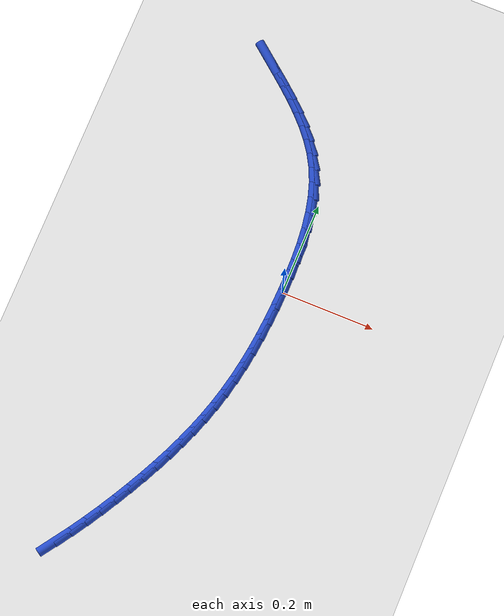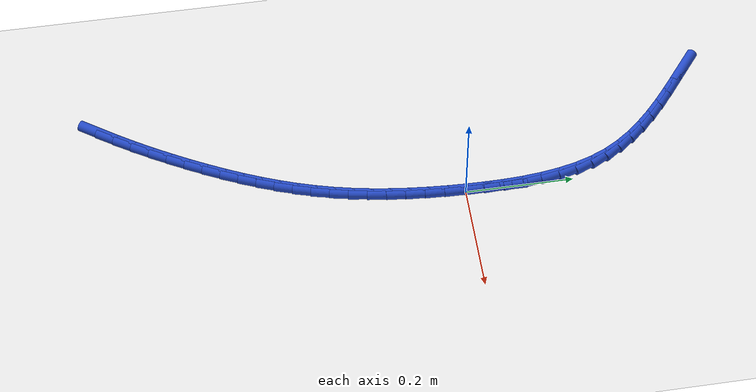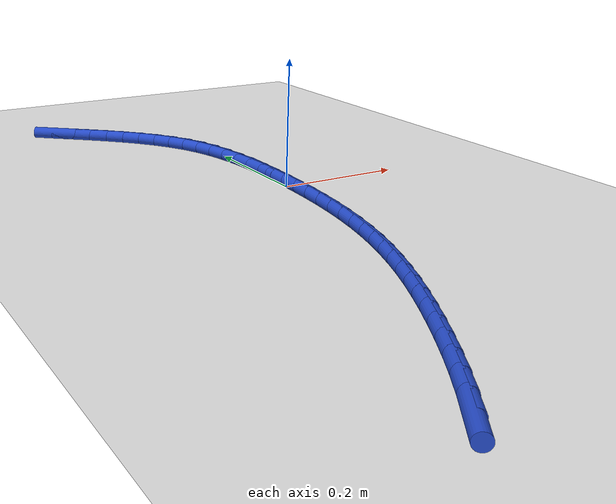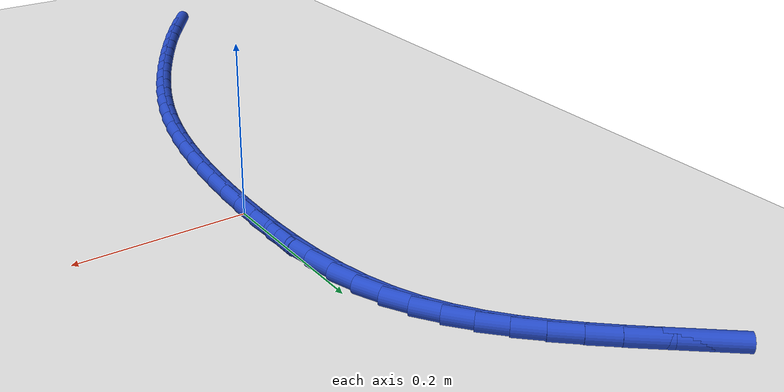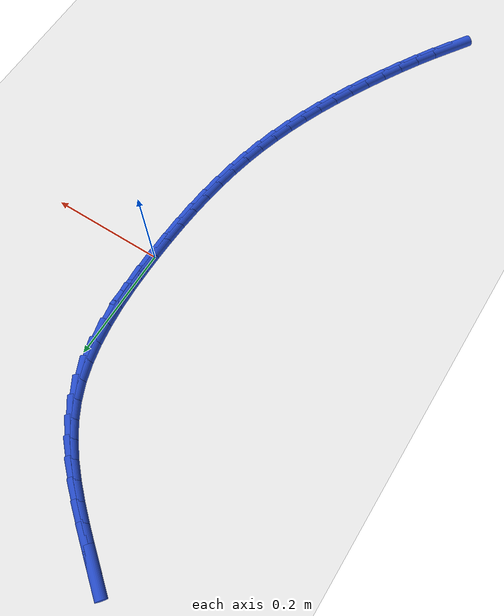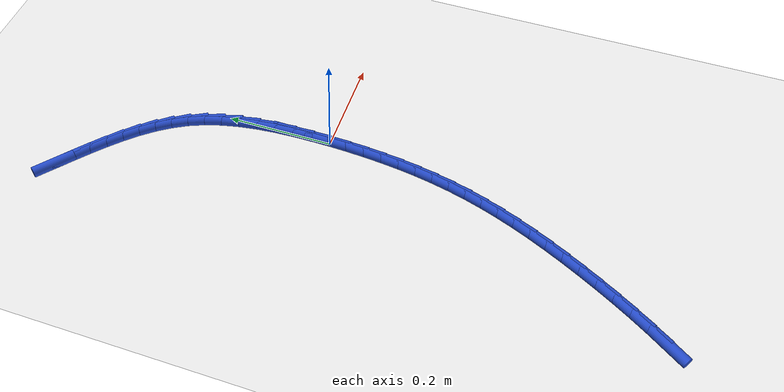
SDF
<sdf version="1.6">
 <world name="default">
  <model name="ground_plane">
   <static>1</static>
   <link name="link">
    <collision name="collision">
     <geometry><plane><normal>0 0 1</normal><size>100 100</size></plane></geometry>
     <surface><friction><ode><mu>100</mu><mu2>50</mu2></ode></friction></surface>
    </collision>
    <visual name="visual">
     <cast_shadows>0</cast_shadows>
     <geometry><plane><normal>0 0 1</normal><size>100 100</size></plane></geometry>
     <material>
      <script><uri>file://media/materials/scripts/gazebo.material</uri><name>Gazebo/WhiteGlow</name></script>
     </material>
    </visual>
   </link>
  </model>
  <model name="line">
   <link name="link_0">
    <pose>1.496198998029996e-17 3.469446951953614e-17 0.01 0 1.57 1.5543776949053272</pose>
    <collision name="collision">
     <geometry><cylinder><radius>0.01</radius><length>0.08</length></cylinder></geometry>
    </collision>
    <visual name="visual">
     <material>
      <script><name>Gazebo/Blue</name><uri>file://media/materials/scripts/gazebo.material</uri></script>
     </material>
     <geometry><cylinder><radius>0.01</radius><length>0.08</length></cylinder></geometry>
    </visual>
   </link>
   <link name="link_1">
    <pose>0.0005924864957599677 0.03608298545428858 0.01 0 1.57 -1.559025904976044</pose>
    <collision name="collision">
     <geometry><cylinder><radius>0.01</radius><length>0.08</length></cylinder></geometry>
    </collision>
    <visual name="visual">
     <material>
      <script><name>Gazebo/Blue</name><uri>file://media/materials/scripts/gazebo.material</uri></script>
     </material>
     <geometry><cylinder><radius>0.01</radius><length>0.08</length></cylinder></geometry>
    </visual>
   </link>
   <link name="link_2">
    <pose>0.000166573687951816 0.07226632239206232 0.01 0 1.57 -1.522479859722978</pose>
    <collision name="collision">
     <geometry><cylinder><radius>0.01</radius><length>0.08</length></cylinder></geometry>
    </collision>
    <visual name="visual">
     <material>
      <script><name>Gazebo/Blue</name><uri>file://media/materials/scripts/gazebo.material</uri></script>
     </material>
     <geometry><cylinder><radius>0.01</radius><length>0.08</length></cylinder></geometry>
    </visual>
   </link>
   <link name="link_3">
    <pose>-0.0015710022527494825 0.10820072990928557 0.01 0 1.57 -1.4764854704934336</pose>
    <collision name="collision">
     <geometry><cylinder><radius>0.01</radius><length>0.08</length></cylinder></geometry>
    </collision>
    <visual name="visual">
     <material>
      <script><name>Gazebo/Blue</name><uri>file://media/materials/scripts/gazebo.material</uri></script>
     </material>
     <geometry><cylinder><radius>0.01</radius><length>0.08</length></cylinder></geometry>
    </visual>
   </link>
   <link name="link_4">
    <pose>-0.004913505155668969 0.14353692710192276 0.01 0 1.57 -1.4195641448092575</pose>
    <collision name="collision">
     <geometry><cylinder><radius>0.01</radius><length>0.08</length></cylinder></geometry>
    </collision>
    <visual name="visual">
     <material>
      <script><name>Gazebo/Blue</name><uri>file://media/materials/scripts/gazebo.material</uri></script>
     </material>
     <geometry><cylinder><radius>0.01</radius><length>0.08</length></cylinder></geometry>
    </visual>
   </link>
   <link name="link_5">
    <pose>-0.010154198850131687 0.17792563306593803 0.01 0 1.57 -1.3498712737847405</pose>
    <collision name="collision">
     <geometry><cylinder><radius>0.01</radius><length>0.08</length></cylinder></geometry>
    </collision>
    <visual name="visual">
     <material>
      <script><name>Gazebo/Blue</name><uri>file://media/materials/scripts/gazebo.material</uri></script>
     </material>
     <geometry><cylinder><radius>0.01</radius><length>0.08</length></cylinder></geometry>
    </visual>
   </link>
   <link name="link_6">
    <pose>-0.017586347165462694 0.2110175668972959 0.01 0 1.57 -1.2653053194806407</pose>
    <collision name="collision">
     <geometry><cylinder><radius>0.01</radius><length>0.08</length></cylinder></geometry>
    </collision>
    <visual name="visual">
     <material>
      <script><name>Gazebo/Blue</name><uri>file://media/materials/scripts/gazebo.material</uri></script>
     </material>
     <geometry><cylinder><radius>0.01</radius><length>0.08</length></cylinder></geometry>
    </visual>
   </link>
   <link name="link_7">
    <pose>-0.027503213930987015 0.24246344769196065 0.01 0 1.57 -1.1641971243596845</pose>
    <collision name="collision">
     <geometry><cylinder><radius>0.01</radius><length>0.08</length></cylinder></geometry>
    </collision>
    <visual name="visual">
     <material>
      <script><name>Gazebo/Blue</name><uri>file://media/materials/scripts/gazebo.material</uri></script>
     </material>
     <geometry><cylinder><radius>0.01</radius><length>0.08</length></cylinder></geometry>
    </visual>
   </link>
   <link name="link_8">
    <pose>-0.040188831175435036 0.2719241907529846 0.01 0 1.57 -1.0572484125708297</pose>
    <collision name="collision">
     <geometry><cylinder><radius>0.01</radius><length>0.08</length></cylinder></geometry>
    </collision>
    <visual name="visual">
     <material>
      <script><name>Gazebo/Blue</name><uri>file://media/materials/scripts/gazebo.material</uri></script>
     </material>
     <geometry><cylinder><radius>0.01</radius><length>0.08</length></cylinder></geometry>
    </visual>
   </link>
   <link name="link_9">
    <pose>-0.05566061919327846 0.2993551748986102 0.01 0 1.57 -0.9602683025920746</pose>
    <collision name="collision">
     <geometry><cylinder><radius>0.01</radius><length>0.08</length></cylinder></geometry>
    </collision>
    <visual name="visual">
     <material>
      <script><name>Gazebo/Blue</name><uri>file://media/materials/scripts/gazebo.material</uri></script>
     </material>
     <geometry><cylinder><radius>0.01</radius><length>0.08</length></cylinder></geometry>
    </visual>
   </link>
   <link name="link_10">
    <pose>-0.07363521219298796 0.32504398686152225 0.01 0 1.57 -0.876838987231082</pose>
    <collision name="collision">
     <geometry><cylinder><radius>0.01</radius><length>0.08</length></cylinder></geometry>
    </collision>
    <visual name="visual">
     <material>
      <script><name>Gazebo/Blue</name><uri>file://media/materials/scripts/gazebo.material</uri></script>
     </material>
     <geometry><cylinder><radius>0.01</radius><length>0.08</length></cylinder></geometry>
    </visual>
   </link>
   <link name="link_11">
    <pose>-0.09381314653134952 0.34929599289940366 0.01 0 1.57 -0.8083742009736272</pose>
    <collision name="collision">
     <geometry><cylinder><radius>0.01</radius><length>0.08</length></cylinder></geometry>
    </collision>
    <visual name="visual">
     <material>
      <script><name>Gazebo/Blue</name><uri>file://media/materials/scripts/gazebo.material</uri></script>
     </material>
     <geometry><cylinder><radius>0.01</radius><length>0.08</length></cylinder></geometry>
    </visual>
   </link>
   <link name="link_12">
    <pose>-0.11589495856514943 0.3724165592699378 0.01 0 1.57 -0.7551396467539171</pose>
    <collision name="collision">
     <geometry><cylinder><radius>0.01</radius><length>0.08</length></cylinder></geometry>
    </collision>
    <visual name="visual">
     <material>
      <script><name>Gazebo/Blue</name><uri>file://media/materials/scripts/gazebo.material</uri></script>
     </material>
     <geometry><cylinder><radius>0.01</radius><length>0.08</length></cylinder></geometry>
    </visual>
   </link>
   <link name="link_13">
    <pose>-0.13958118465117353 0.3947110522308071 0.01 0 1.57 -0.7167072337716769</pose>
    <collision name="collision">
     <geometry><cylinder><radius>0.01</radius><length>0.08</length></cylinder></geometry>
    </collision>
    <visual name="visual">
     <material>
      <script><name>Gazebo/Blue</name><uri>file://media/materials/scripts/gazebo.material</uri></script>
     </material>
     <geometry><cylinder><radius>0.01</radius><length>0.08</length></cylinder></geometry>
    </visual>
   </link>
   <link name="link_14">
    <pose>-0.16457236114620796 0.4164848380396951 0.01 0 1.57 -0.6923398217971319</pose>
    <collision name="collision">
     <geometry><cylinder><radius>0.01</radius><length>0.08</length></cylinder></geometry>
    </collision>
    <visual name="visual">
     <material>
      <script><name>Gazebo/Blue</name><uri>file://media/materials/scripts/gazebo.material</uri></script>
     </material>
     <geometry><cylinder><radius>0.01</radius><length>0.08</length></cylinder></geometry>
    </visual>
   </link>
   <link name="link_15">
    <pose>-0.1905690244070389 0.43804328295428463 0.01 0 1.57 -0.681244977231006</pose>
    <collision name="collision">
     <geometry><cylinder><radius>0.01</radius><length>0.08</length></cylinder></geometry>
    </collision>
    <visual name="visual">
     <material>
      <script><name>Gazebo/Blue</name><uri>file://media/materials/scripts/gazebo.material</uri></script>
     </material>
     <geometry><cylinder><radius>0.01</radius><length>0.08</length></cylinder></geometry>
    </visual>
   </link>
   <link name="link_16">
    <pose>-0.21727171079045235 0.4596917532322585 0.01 0 1.57 -0.6827074851305684</pose>
    <collision name="collision">
     <geometry><cylinder><radius>0.01</radius><length>0.08</length></cylinder></geometry>
    </collision>
    <visual name="visual">
     <material>
      <script><name>Gazebo/Blue</name><uri>file://media/materials/scripts/gazebo.material</uri></script>
     </material>
     <geometry><cylinder><radius>0.01</radius><length>0.08</length></cylinder></geometry>
    </visual>
   </link>
   <link name="link_220">
    <pose>-0.22813559499087738 -0.6545110411851145 0.01 0 1.57 0.9734274152386753</pose>
    <collision name="collision">
     <geometry><cylinder><radius>0.01</radius><length>0.08</length></cylinder></geometry>
    </collision>
    <visual name="visual">
     <material>
      <script><name>Gazebo/Blue</name><uri>file://media/materials/scripts/gazebo.material</uri></script>
     </material>
     <geometry><cylinder><radius>0.01</radius><length>0.08</length></cylinder></geometry>
    </visual>
   </link>
   <link name="link_221">
    <pose>-0.20720306438907737 -0.6237406318837844 0.01 0 1.57 1.0017370590022014</pose>
    <collision name="collision">
     <geometry><cylinder><radius>0.01</radius><length>0.08</length></cylinder></geometry>
    </collision>
    <visual name="visual">
     <material>
      <script><name>Gazebo/Blue</name><uri>file://media/materials/scripts/gazebo.material</uri></script>
     </material>
     <geometry><cylinder><radius>0.01</radius><length>0.08</length></cylinder></geometry>
    </visual>
   </link>
   <link name="link_222">
    <pose>-0.18718044275612852 -0.5924377818040423 0.01 0 1.57 1.0273182517447035</pose>
    <collision name="collision">
     <geometry><cylinder><radius>0.01</radius><length>0.08</length></cylinder></geometry>
    </collision>
    <visual name="visual">
     <material>
      <script><name>Gazebo/Blue</name><uri>file://media/materials/scripts/gazebo.material</uri></script>
     </material>
     <geometry><cylinder><radius>0.01</radius><length>0.08</length></cylinder></geometry>
    </visual>
   </link>
   <link name="link_223">
    <pose>-0.16805080638249478 -0.560774969754413 0.01 0 1.57 1.0503870868441334</pose>
    <collision name="collision">
     <geometry><cylinder><radius>0.01</radius><length>0.08</length></cylinder></geometry>
    </collision>
    <visual name="visual">
     <material>
      <script><name>Gazebo/Blue</name><uri>file://media/materials/scripts/gazebo.material</uri></script>
     </material>
     <geometry><cylinder><radius>0.01</radius><length>0.08</length></cylinder></geometry>
    </visual>
   </link>
   <link name="link_224">
    <pose>-0.14979723155864139 -0.5289246745434241 0.01 0 1.57 1.0711271104206055</pose>
    <collision name="collision">
     <geometry><cylinder><radius>0.01</radius><length>0.08</length></cylinder></geometry>
    </collision>
    <visual name="visual">
     <material>
      <script><name>Gazebo/Blue</name><uri>file://media/materials/scripts/gazebo.material</uri></script>
     </material>
     <geometry><cylinder><radius>0.01</radius><length>0.08</length></cylinder></geometry>
    </visual>
   </link>
   <link name="link_225">
    <pose>-0.13240280547857458 -0.4970593430748662 0.01 0 1.57 1.0908122244431002</pose>
    <collision name="collision">
     <geometry><cylinder><radius>0.01</radius><length>0.08</length></cylinder></geometry>
    </collision>
    <visual name="visual">
     <material>
      <script><name>Gazebo/Blue</name><uri>file://media/materials/scripts/gazebo.material</uri></script>
     </material>
     <geometry><cylinder><radius>0.01</radius><length>0.08</length></cylinder></geometry>
    </visual>
   </link>
   <link name="link_226">
    <pose>-0.11586858526248177 -0.4652988406513155 0.01 0 1.57 1.1129560805087</pose>
    <collision name="collision">
     <geometry><cylinder><radius>0.01</radius><length>0.08</length></cylinder></geometry>
    </collision>
    <visual name="visual">
     <material>
      <script><name>Gazebo/Blue</name><uri>file://media/materials/scripts/gazebo.material</uri></script>
     </material>
     <geometry><cylinder><radius>0.01</radius><length>0.08</length></cylinder></geometry>
    </visual>
   </link>
   <link name="link_227">
    <pose>-0.10025022474973132 -0.4336032777223349 0.01 0 1.57 1.1382479888374493</pose>
    <collision name="collision">
     <geometry><cylinder><radius>0.01</radius><length>0.08</length></cylinder></geometry>
    </collision>
    <visual name="visual">
     <material>
      <script><name>Gazebo/Blue</name><uri>file://media/materials/scripts/gazebo.material</uri></script>
     </material>
     <geometry><cylinder><radius>0.01</radius><length>0.08</length></cylinder></geometry>
    </visual>
   </link>
   <link name="link_228">
    <pose>-0.08561370818997073 -0.40190253703881856 0.01 0 1.57 1.166692115912217</pose>
    <collision name="collision">
     <geometry><cylinder><radius>0.01</radius><length>0.08</length></cylinder></geometry>
    </collision>
    <visual name="visual">
     <material>
      <script><name>Gazebo/Blue</name><uri>file://media/materials/scripts/gazebo.material</uri></script>
     </material>
     <geometry><cylinder><radius>0.01</radius><length>0.08</length></cylinder></geometry>
    </visual>
   </link>
   <link name="link_229">
    <pose>-0.07202501983284754 -0.37012650135166 0.01 0 1.57 1.198246762114671</pose>
    <collision name="collision">
     <geometry><cylinder><radius>0.01</radius><length>0.08</length></cylinder></geometry>
    </collision>
    <visual name="visual">
     <material>
      <script><name>Gazebo/Blue</name><uri>file://media/materials/scripts/gazebo.material</uri></script>
     </material>
     <geometry><cylinder><radius>0.01</radius><length>0.08</length></cylinder></geometry>
    </visual>
   </link>
   <link name="link_230">
    <pose>-0.059550143928008996 -0.3382050534117523 0.01 0 1.57 1.2328154187902447</pose>
    <collision name="collision">
     <geometry><cylinder><radius>0.01</radius><length>0.08</length></cylinder></geometry>
    </collision>
    <visual name="visual">
     <material>
      <script><name>Gazebo/Blue</name><uri>file://media/materials/scripts/gazebo.material</uri></script>
     </material>
     <geometry><cylinder><radius>0.01</radius><length>0.08</length></cylinder></geometry>
    </visual>
   </link>
   <link name="link_231">
    <pose>-0.0482550647251033 -0.3060680759699912 0.01 0 1.57 1.270238922071942</pose>
    <collision name="collision">
     <geometry><cylinder><radius>0.01</radius><length>0.08</length></cylinder></geometry>
    </collision>
    <visual name="visual">
     <material>
      <script><name>Gazebo/Blue</name><uri>file://media/materials/scripts/gazebo.material</uri></script>
     </material>
     <geometry><cylinder><radius>0.01</radius><length>0.08</length></cylinder></geometry>
    </visual>
   </link>
   <link name="link_232">
    <pose>-0.03820576647377764 -0.27364545177726946 0.01 0 1.57 1.31016291860118</pose>
    <collision name="collision">
     <geometry><cylinder><radius>0.01</radius><length>0.08</length></cylinder></geometry>
    </collision>
    <visual name="visual">
     <material>
      <script><name>Gazebo/Blue</name><uri>file://media/materials/scripts/gazebo.material</uri></script>
     </material>
     <geometry><cylinder><radius>0.01</radius><length>0.08</length></cylinder></geometry>
    </visual>
   </link>
   <link name="link_233">
    <pose>-0.029464222301787923 -0.24086874457762497 0.01 0 1.57 1.3499409302855232</pose>
    <collision name="collision">
     <geometry><cylinder><radius>0.01</radius><length>0.08</length></cylinder></geometry>
    </collision>
    <visual name="visual">
     <material>
      <script><name>Gazebo/Blue</name><uri>file://media/materials/scripts/gazebo.material</uri></script>
     </material>
     <geometry><cylinder><radius>0.01</radius><length>0.08</length></cylinder></geometry>
    </visual>
   </link>
   <link name="link_234">
    <pose>-0.0220174580906427 -0.2077009272346624 0.01 0 1.57 1.3872514075748552</pose>
    <collision name="collision">
     <geometry><cylinder><radius>0.01</radius><length>0.08</length></cylinder></geometry>
    </collision>
    <visual name="visual">
     <material>
      <script><name>Gazebo/Blue</name><uri>file://media/materials/scripts/gazebo.material</uri></script>
     </material>
     <geometry><cylinder><radius>0.01</radius><length>0.08</length></cylinder></geometry>
    </visual>
   </link>
   <link name="link_235">
    <pose>-0.015786067741682792 -0.17413281312798462 0.01 0 1.57 1.4218710361240756</pose>
    <collision name="collision">
     <geometry><cylinder><radius>0.01</radius><length>0.08</length></cylinder></geometry>
    </collision>
    <visual name="visual">
     <material>
      <script><name>Gazebo/Blue</name><uri>file://media/materials/scripts/gazebo.material</uri></script>
     </material>
     <geometry><cylinder><radius>0.01</radius><length>0.08</length></cylinder></geometry>
    </visual>
   </link>
   <link name="link_236">
    <pose>-0.010688344856917845 -0.14015617965362398 0.01 0 1.57 1.4537024275209451</pose>
    <collision name="collision">
     <geometry><cylinder><radius>0.01</radius><length>0.08</length></cylinder></geometry>
    </collision>
    <visual name="visual">
     <material>
      <script><name>Gazebo/Blue</name><uri>file://media/materials/scripts/gazebo.material</uri></script>
     </material>
     <geometry><cylinder><radius>0.01</radius><length>0.08</length></cylinder></geometry>
    </visual>
   </link>
   <link name="link_237">
    <pose>-0.0066425830383574705 -0.10576280420761282 0.01 0 1.57 1.4826948892808849</pose>
    <collision name="collision">
     <geometry><cylinder><radius>0.01</radius><length>0.08</length></cylinder></geometry>
    </collision>
    <visual name="visual">
     <material>
      <script><name>Gazebo/Blue</name><uri>file://media/materials/scripts/gazebo.material</uri></script>
     </material>
     <geometry><cylinder><radius>0.01</radius><length>0.08</length></cylinder></geometry>
    </visual>
   </link>
   <link name="link_238">
    <pose>-0.003567075888011223 -0.07094446418598276 0.01 0 1.57 1.5088370361651253</pose>
    <collision name="collision">
     <geometry><cylinder><radius>0.01</radius><length>0.08</length></cylinder></geometry>
    </collision>
    <visual name="visual">
     <material>
      <script><name>Gazebo/Blue</name><uri>file://media/materials/scripts/gazebo.material</uri></script>
     </material>
     <geometry><cylinder><radius>0.01</radius><length>0.08</length></cylinder></geometry>
    </visual>
   </link>
   <link name="link_239">
    <pose>-0.0013801170078888798 -0.035692936984767915 0.01 0 1.57 1.532149189820856</pose>
    <collision name="collision">
     <geometry><cylinder><radius>0.01</radius><length>0.08</length></cylinder></geometry>
    </collision>
    <visual name="visual">
     <material>
      <script><name>Gazebo/Blue</name><uri>file://media/materials/scripts/gazebo.material</uri></script>
     </material>
     <geometry><cylinder><radius>0.01</radius><length>0.08</length></cylinder></geometry>
    </visual>
   </link>
   <link name="link_240">
    <pose>2.7321894746634712e-17 1.734723475976807e-16 0.01 0 1.57 1.5526761472474182</pose>
    <collision name="collision">
     <geometry><cylinder><radius>0.01</radius><length>0.08</length></cylinder></geometry>
    </collision>
    <visual name="visual">
     <material>
      <script><name>Gazebo/Blue</name><uri>file://media/materials/scripts/gazebo.material</uri></script>
     </material>
     <geometry><cylinder><radius>0.01</radius><length>0.08</length></cylinder></geometry>
    </visual>
   </link>
   <link name="link_241">
    <pose>0.0006549815336458794 0.03614256937228912 0.01 0 1.57 1.5704806895526966</pose>
    <collision name="collision">
     <geometry><cylinder><radius>0.01</radius><length>0.08</length></cylinder></geometry>
    </collision>
    <visual name="visual">
     <material>
      <script><name>Gazebo/Blue</name><uri>file://media/materials/scripts/gazebo.material</uri></script>
     </material>
     <geometry><cylinder><radius>0.01</radius><length>0.08</length></cylinder></geometry>
    </visual>
   </link>
   <link name="link_242">
    <pose>0.0006665339910390576 0.07274299373606655 0.01 0 1.57 1.5616337215167988</pose>
    <collision name="collision">
     <geometry><cylinder><radius>0.01</radius><length>0.08</length></cylinder></geometry>
    </collision>
    <visual name="visual">
     <material>
      <script><name>Gazebo/Blue</name><uri>file://media/materials/scripts/gazebo.material</uri></script>
     </material>
     <geometry><cylinder><radius>0.01</radius><length>0.08</length></cylinder></geometry>
    </visual>
   </link>
  </model>
 </world>
</sdf>
